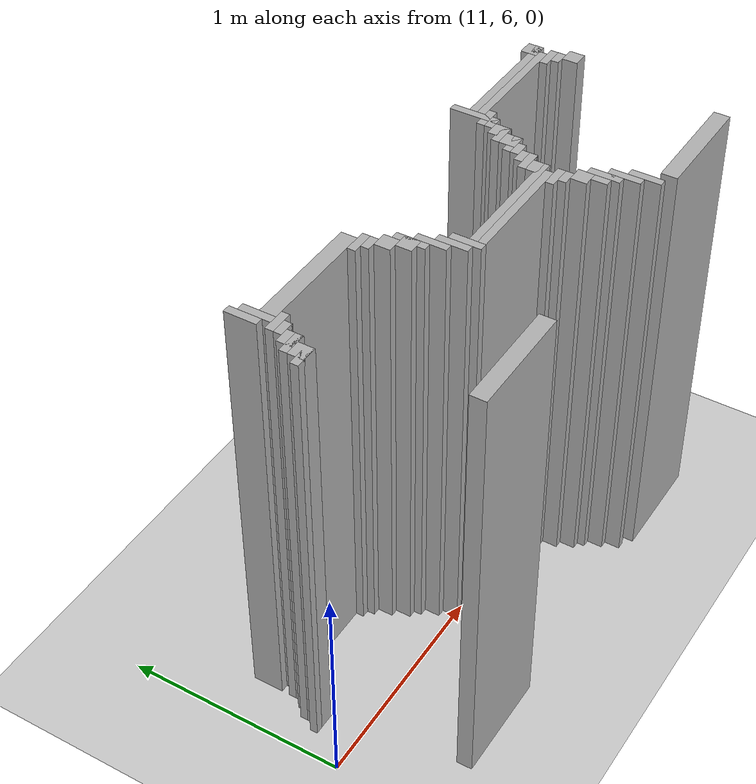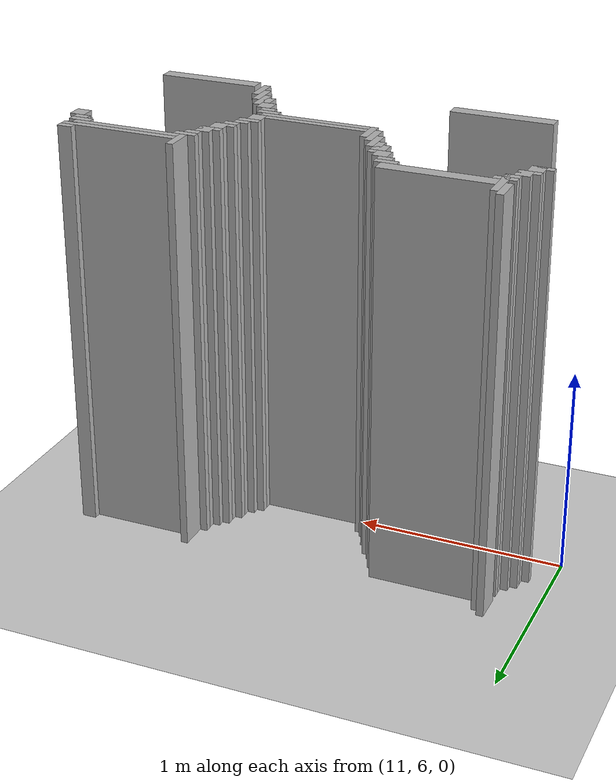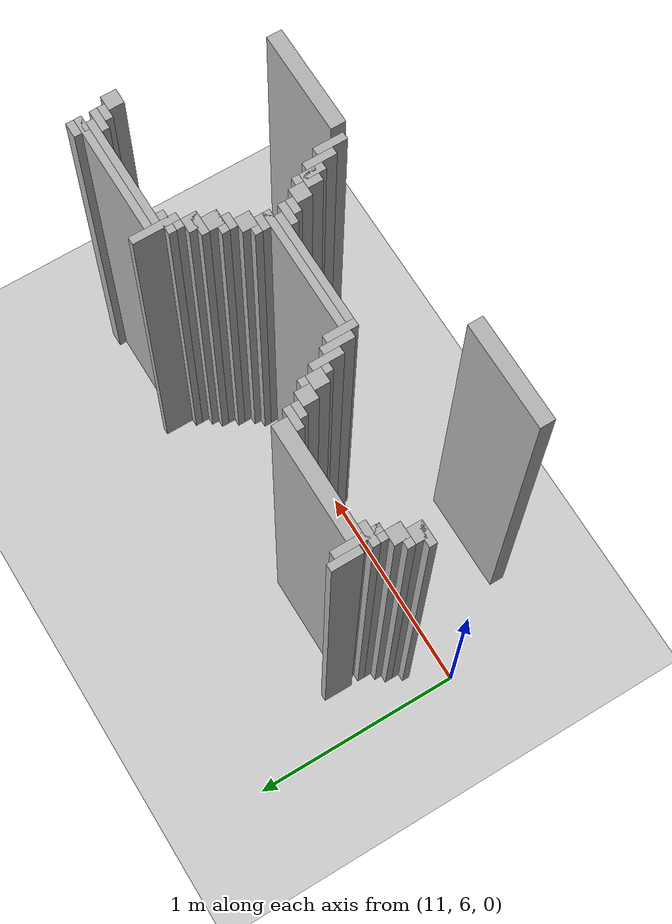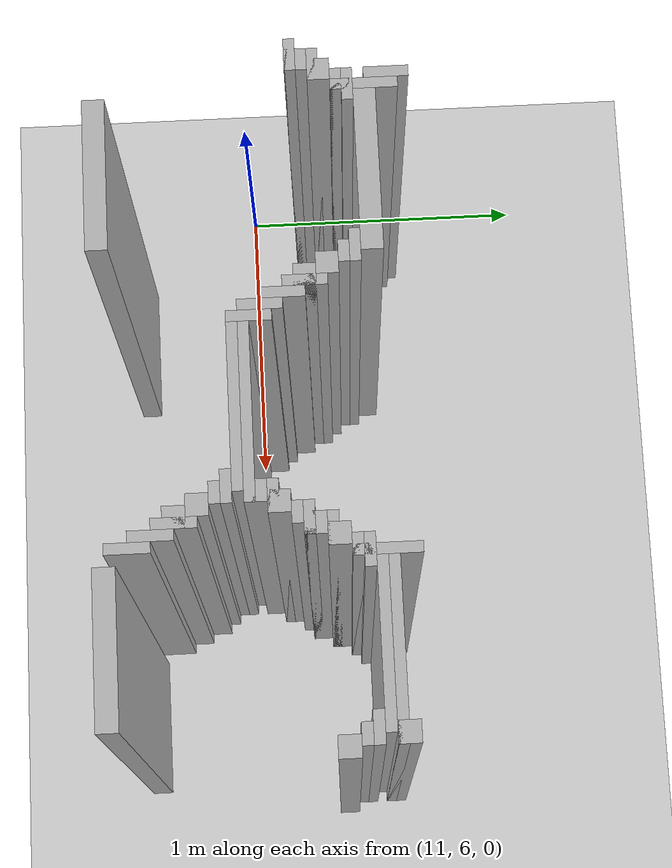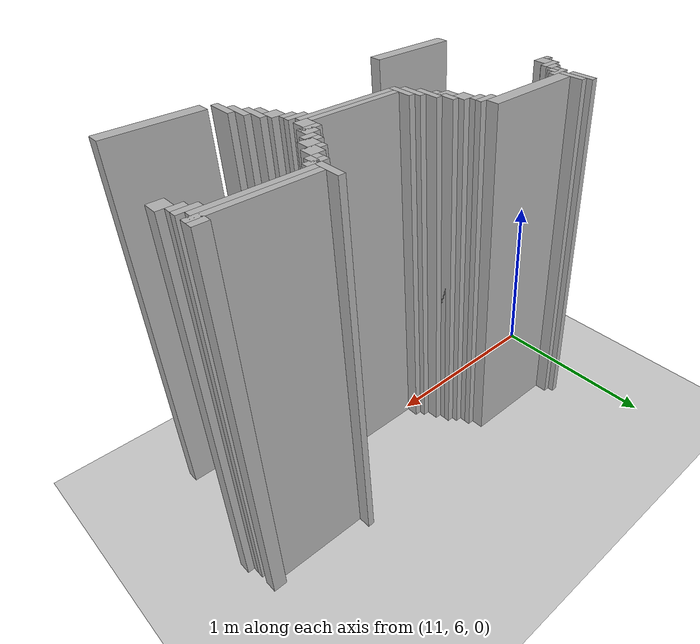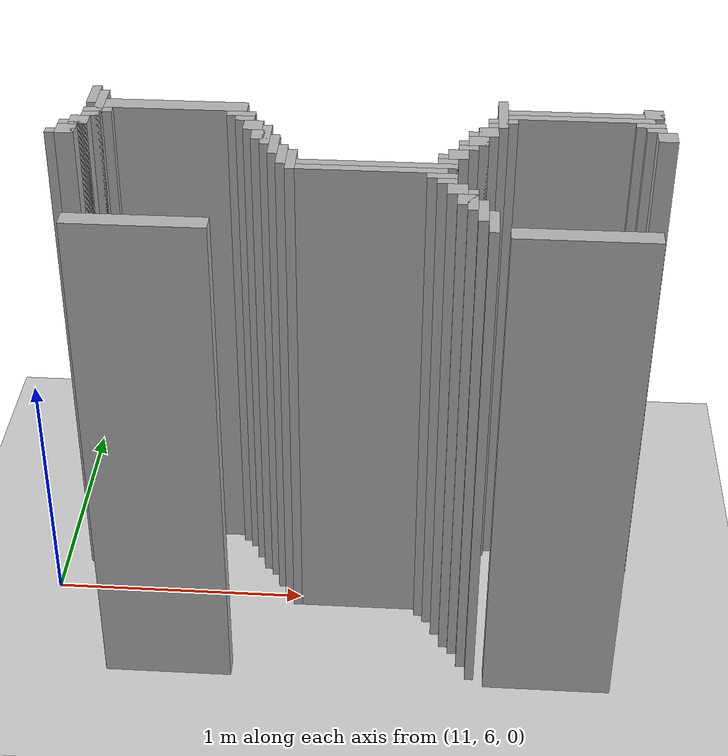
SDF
<sdf version="1.6">
 <world name="slam_world">
  <model name="ground_plane">
   <static>true</static>
   <link name="link">
    <collision name="collision">
     <geometry><plane><normal>0 0 1</normal><size>100 100</size></plane></geometry>
    </collision>
    <visual name="visual">
     <geometry><plane><normal>0 0 1</normal><size>100 100</size></plane></geometry>
     <material>
      <ambient>0.8 0.8 0.8 1</ambient>
      <diffuse>0.8 0.8 0.8 1</diffuse>
      <specular>0.8 0.8 0.8 1</specular>
     </material>
    </visual>
   </link>
  </model>
  <model name="wall_3561">
   <static>true</static>
   <pose>11.223897911832946 6.473317865429234 1.0 0 0 0</pose>
   <link name="link">
    <collision name="collision">
     <geometry><box><size>0.03480278422273782 0.13921113689095127 2.0</size></box></geometry>
    </collision>
    <visual name="visual">
     <geometry><box><size>0.03480278422273782 0.13921113689095127 2.0</size></box></geometry>
     <material><ambient>0.5 0.5 0.5 1</ambient><diffuse>0.7 0.7 0.7 1</diffuse></material>
    </visual>
   </link>
  </model>
  <model name="wall_3581">
   <static>true</static>
   <pose>11.258700696055683 6.403712296983758 1.0 0 0 0</pose>
   <link name="link">
    <collision name="collision">
     <geometry><box><size>0.03480278422273782 0.2088167053364269 2.0</size></box></geometry>
    </collision>
    <visual name="visual">
     <geometry><box><size>0.03480278422273782 0.2088167053364269 2.0</size></box></geometry>
     <material><ambient>0.5 0.5 0.5 1</ambient><diffuse>0.7 0.7 0.7 1</diffuse></material>
    </visual>
   </link>
  </model>
  <model name="wall_3582">
   <static>true</static>
   <pose>12.720417633410673 6.403712296983758 1.0 0 0 0</pose>
   <link name="link">
    <collision name="collision">
     <geometry><box><size>0.03480278422273782 0.2088167053364269 2.0</size></box></geometry>
    </collision>
    <visual name="visual">
     <geometry><box><size>0.03480278422273782 0.2088167053364269 2.0</size></box></geometry>
     <material><ambient>0.5 0.5 0.5 1</ambient><diffuse>0.7 0.7 0.7 1</diffuse></material>
    </visual>
   </link>
  </model>
  <model name="wall_3594">
   <static>true</static>
   <pose>13.259860788863108 6.438515081206496 1.0 0 0 0</pose>
   <link name="link">
    <collision name="collision">
     <geometry><box><size>0.06960556844547564 0.06960556844547564 2.0</size></box></geometry>
    </collision>
    <visual name="visual">
     <geometry><box><size>0.06960556844547564 0.06960556844547564 2.0</size></box></geometry>
     <material><ambient>0.5 0.5 0.5 1</ambient><diffuse>0.7 0.7 0.7 1</diffuse></material>
    </visual>
   </link>
  </model>
  <model name="wall_3607">
   <static>true</static>
   <pose>11.537122969837586 6.403712296983758 1.0 0 0 0</pose>
   <link name="link">
    <collision name="collision">
     <geometry><box><size>0.5220417633410672 0.06960556844547564 2.0</size></box></geometry>
    </collision>
    <visual name="visual">
     <geometry><box><size>0.5220417633410672 0.06960556844547564 2.0</size></box></geometry>
     <material><ambient>0.5 0.5 0.5 1</ambient><diffuse>0.7 0.7 0.7 1</diffuse></material>
    </visual>
   </link>
  </model>
  <model name="wall_3608">
   <static>true</static>
   <pose>13.016241299303944 6.421113689095128 1.0 0 0 0</pose>
   <link name="link">
    <collision name="collision">
     <geometry><box><size>0.5568445475638051 0.03480278422273782 2.0</size></box></geometry>
    </collision>
    <visual name="visual">
     <geometry><box><size>0.5568445475638051 0.03480278422273782 2.0</size></box></geometry>
     <material><ambient>0.5 0.5 0.5 1</ambient><diffuse>0.7 0.7 0.7 1</diffuse></material>
    </visual>
   </link>
  </model>
  <model name="wall_3618">
   <static>true</static>
   <pose>12.998839907192576 6.386310904872389 1.0 0 0 0</pose>
   <link name="link">
    <collision name="collision">
     <geometry><box><size>0.5220417633410672 0.03480278422273782 2.0</size></box></geometry>
    </collision>
    <visual name="visual">
     <geometry><box><size>0.5220417633410672 0.03480278422273782 2.0</size></box></geometry>
     <material><ambient>0.5 0.5 0.5 1</ambient><diffuse>0.7 0.7 0.7 1</diffuse></material>
    </visual>
   </link>
  </model>
  <model name="wall_3628">
   <static>true</static>
   <pose>11.258700696055683 6.351508120649652 1.0 0 0 0</pose>
   <link name="link">
    <collision name="collision">
     <geometry><box><size>0.10440835266821345 0.03480278422273782 2.0</size></box></geometry>
    </collision>
    <visual name="visual">
     <geometry><box><size>0.10440835266821345 0.03480278422273782 2.0</size></box></geometry>
     <material><ambient>0.5 0.5 0.5 1</ambient><diffuse>0.7 0.7 0.7 1</diffuse></material>
    </visual>
   </link>
  </model>
  <model name="wall_3629">
   <static>true</static>
   <pose>11.780742459396752 6.351508120649652 1.0 0 0 0</pose>
   <link name="link">
    <collision name="collision">
     <geometry><box><size>0.10440835266821345 0.03480278422273782 2.0</size></box></geometry>
    </collision>
    <visual name="visual">
     <geometry><box><size>0.10440835266821345 0.03480278422273782 2.0</size></box></geometry>
     <material><ambient>0.5 0.5 0.5 1</ambient><diffuse>0.7 0.7 0.7 1</diffuse></material>
    </visual>
   </link>
  </model>
  <model name="wall_3630">
   <static>true</static>
   <pose>12.720417633410673 6.351508120649652 1.0 0 0 0</pose>
   <link name="link">
    <collision name="collision">
     <geometry><box><size>0.10440835266821345 0.03480278422273782 2.0</size></box></geometry>
    </collision>
    <visual name="visual">
     <geometry><box><size>0.10440835266821345 0.03480278422273782 2.0</size></box></geometry>
     <material><ambient>0.5 0.5 0.5 1</ambient><diffuse>0.7 0.7 0.7 1</diffuse></material>
    </visual>
   </link>
  </model>
  <model name="wall_3631">
   <static>true</static>
   <pose>13.24245939675174 6.351508120649652 1.0 0 0 0</pose>
   <link name="link">
    <collision name="collision">
     <geometry><box><size>0.10440835266821345 0.03480278422273782 2.0</size></box></geometry>
    </collision>
    <visual name="visual">
     <geometry><box><size>0.10440835266821345 0.03480278422273782 2.0</size></box></geometry>
     <material><ambient>0.5 0.5 0.5 1</ambient><diffuse>0.7 0.7 0.7 1</diffuse></material>
    </visual>
   </link>
  </model>
  <model name="wall_3637">
   <static>true</static>
   <pose>11.241299303944315 6.316705336426914 1.0 0 0 0</pose>
   <link name="link">
    <collision name="collision">
     <geometry><box><size>0.06960556844547564 0.03480278422273782 2.0</size></box></geometry>
    </collision>
    <visual name="visual">
     <geometry><box><size>0.06960556844547564 0.03480278422273782 2.0</size></box></geometry>
     <material><ambient>0.5 0.5 0.5 1</ambient><diffuse>0.7 0.7 0.7 1</diffuse></material>
    </visual>
   </link>
  </model>
  <model name="wall_3638">
   <static>true</static>
   <pose>11.79814385150812 6.316705336426914 1.0 0 0 0</pose>
   <link name="link">
    <collision name="collision">
     <geometry><box><size>0.06960556844547564 0.03480278422273782 2.0</size></box></geometry>
    </collision>
    <visual name="visual">
     <geometry><box><size>0.06960556844547564 0.03480278422273782 2.0</size></box></geometry>
     <material><ambient>0.5 0.5 0.5 1</ambient><diffuse>0.7 0.7 0.7 1</diffuse></material>
    </visual>
   </link>
  </model>
  <model name="wall_3639">
   <static>true</static>
   <pose>12.703016241299304 6.316705336426914 1.0 0 0 0</pose>
   <link name="link">
    <collision name="collision">
     <geometry><box><size>0.06960556844547564 0.03480278422273782 2.0</size></box></geometry>
    </collision>
    <visual name="visual">
     <geometry><box><size>0.06960556844547564 0.03480278422273782 2.0</size></box></geometry>
     <material><ambient>0.5 0.5 0.5 1</ambient><diffuse>0.7 0.7 0.7 1</diffuse></material>
    </visual>
   </link>
  </model>
  <model name="wall_3640">
   <static>true</static>
   <pose>13.259860788863108 6.316705336426914 1.0 0 0 0</pose>
   <link name="link">
    <collision name="collision">
     <geometry><box><size>0.06960556844547564 0.03480278422273782 2.0</size></box></geometry>
    </collision>
    <visual name="visual">
     <geometry><box><size>0.06960556844547564 0.03480278422273782 2.0</size></box></geometry>
     <material><ambient>0.5 0.5 0.5 1</ambient><diffuse>0.7 0.7 0.7 1</diffuse></material>
    </visual>
   </link>
  </model>
  <model name="wall_3650">
   <static>true</static>
   <pose>11.206496519721577 6.2645011600928076 1.0 0 0 0</pose>
   <link name="link">
    <collision name="collision">
     <geometry><box><size>0.06960556844547564 0.06960556844547564 2.0</size></box></geometry>
    </collision>
    <visual name="visual">
     <geometry><box><size>0.06960556844547564 0.06960556844547564 2.0</size></box></geometry>
     <material><ambient>0.5 0.5 0.5 1</ambient><diffuse>0.7 0.7 0.7 1</diffuse></material>
    </visual>
   </link>
  </model>
  <model name="wall_3651">
   <static>true</static>
   <pose>11.832946635730858 6.2645011600928076 1.0 0 0 0</pose>
   <link name="link">
    <collision name="collision">
     <geometry><box><size>0.06960556844547564 0.06960556844547564 2.0</size></box></geometry>
    </collision>
    <visual name="visual">
     <geometry><box><size>0.06960556844547564 0.06960556844547564 2.0</size></box></geometry>
     <material><ambient>0.5 0.5 0.5 1</ambient><diffuse>0.7 0.7 0.7 1</diffuse></material>
    </visual>
   </link>
  </model>
  <model name="wall_3652">
   <static>true</static>
   <pose>12.668213457076565 6.2645011600928076 1.0 0 0 0</pose>
   <link name="link">
    <collision name="collision">
     <geometry><box><size>0.06960556844547564 0.06960556844547564 2.0</size></box></geometry>
    </collision>
    <visual name="visual">
     <geometry><box><size>0.06960556844547564 0.06960556844547564 2.0</size></box></geometry>
     <material><ambient>0.5 0.5 0.5 1</ambient><diffuse>0.7 0.7 0.7 1</diffuse></material>
    </visual>
   </link>
  </model>
  <model name="wall_3653">
   <static>true</static>
   <pose>13.294663573085847 6.2645011600928076 1.0 0 0 0</pose>
   <link name="link">
    <collision name="collision">
     <geometry><box><size>0.06960556844547564 0.06960556844547564 2.0</size></box></geometry>
    </collision>
    <visual name="visual">
     <geometry><box><size>0.06960556844547564 0.06960556844547564 2.0</size></box></geometry>
     <material><ambient>0.5 0.5 0.5 1</ambient><diffuse>0.7 0.7 0.7 1</diffuse></material>
    </visual>
   </link>
  </model>
  <model name="wall_3663">
   <static>true</static>
   <pose>11.189095127610209 6.247099767981438 1.0 0 0 0</pose>
   <link name="link">
    <collision name="collision">
     <geometry><box><size>0.10440835266821345 0.03480278422273782 2.0</size></box></geometry>
    </collision>
    <visual name="visual">
     <geometry><box><size>0.10440835266821345 0.03480278422273782 2.0</size></box></geometry>
     <material><ambient>0.5 0.5 0.5 1</ambient><diffuse>0.7 0.7 0.7 1</diffuse></material>
    </visual>
   </link>
  </model>
  <model name="wall_3664">
   <static>true</static>
   <pose>11.885150812064964 6.194895591647332 1.0 0 0 0</pose>
   <link name="link">
    <collision name="collision">
     <geometry><box><size>0.03480278422273782 0.13921113689095127 2.0</size></box></geometry>
    </collision>
    <visual name="visual">
     <geometry><box><size>0.03480278422273782 0.13921113689095127 2.0</size></box></geometry>
     <material><ambient>0.5 0.5 0.5 1</ambient><diffuse>0.7 0.7 0.7 1</diffuse></material>
    </visual>
   </link>
  </model>
  <model name="wall_3665">
   <static>true</static>
   <pose>12.650812064965196 6.247099767981438 1.0 0 0 0</pose>
   <link name="link">
    <collision name="collision">
     <geometry><box><size>0.10440835266821345 0.03480278422273782 2.0</size></box></geometry>
    </collision>
    <visual name="visual">
     <geometry><box><size>0.10440835266821345 0.03480278422273782 2.0</size></box></geometry>
     <material><ambient>0.5 0.5 0.5 1</ambient><diffuse>0.7 0.7 0.7 1</diffuse></material>
    </visual>
   </link>
  </model>
  <model name="wall_3676">
   <static>true</static>
   <pose>11.17169373549884 6.194895591647332 1.0 0 0 0</pose>
   <link name="link">
    <collision name="collision">
     <geometry><box><size>0.06960556844547564 0.06960556844547564 2.0</size></box></geometry>
    </collision>
    <visual name="visual">
     <geometry><box><size>0.06960556844547564 0.06960556844547564 2.0</size></box></geometry>
     <material><ambient>0.5 0.5 0.5 1</ambient><diffuse>0.7 0.7 0.7 1</diffuse></material>
    </visual>
   </link>
  </model>
  <model name="wall_3677">
   <static>true</static>
   <pose>11.867749419953595 6.194895591647332 1.0 0 0 0</pose>
   <link name="link">
    <collision name="collision">
     <geometry><box><size>0.06960556844547564 0.06960556844547564 2.0</size></box></geometry>
    </collision>
    <visual name="visual">
     <geometry><box><size>0.06960556844547564 0.06960556844547564 2.0</size></box></geometry>
     <material><ambient>0.5 0.5 0.5 1</ambient><diffuse>0.7 0.7 0.7 1</diffuse></material>
    </visual>
   </link>
  </model>
  <model name="wall_3678">
   <static>true</static>
   <pose>12.633410672853827 6.194895591647332 1.0 0 0 0</pose>
   <link name="link">
    <collision name="collision">
     <geometry><box><size>0.06960556844547564 0.06960556844547564 2.0</size></box></geometry>
    </collision>
    <visual name="visual">
     <geometry><box><size>0.06960556844547564 0.06960556844547564 2.0</size></box></geometry>
     <material><ambient>0.5 0.5 0.5 1</ambient><diffuse>0.7 0.7 0.7 1</diffuse></material>
    </visual>
   </link>
  </model>
  <model name="wall_3689">
   <static>true</static>
   <pose>11.154292343387471 6.177494199535962 1.0 0 0 0</pose>
   <link name="link">
    <collision name="collision">
     <geometry><box><size>0.10440835266821345 0.03480278422273782 2.0</size></box></geometry>
    </collision>
    <visual name="visual">
     <geometry><box><size>0.10440835266821345 0.03480278422273782 2.0</size></box></geometry>
     <material><ambient>0.5 0.5 0.5 1</ambient><diffuse>0.7 0.7 0.7 1</diffuse></material>
    </visual>
   </link>
  </model>
  <model name="wall_3690">
   <static>true</static>
   <pose>11.919953596287703 6.125290023201856 1.0 0 0 0</pose>
   <link name="link">
    <collision name="collision">
     <geometry><box><size>0.03480278422273782 0.13921113689095127 2.0</size></box></geometry>
    </collision>
    <visual name="visual">
     <geometry><box><size>0.03480278422273782 0.13921113689095127 2.0</size></box></geometry>
     <material><ambient>0.5 0.5 0.5 1</ambient><diffuse>0.7 0.7 0.7 1</diffuse></material>
    </visual>
   </link>
  </model>
  <model name="wall_3691">
   <static>true</static>
   <pose>12.616009280742459 6.177494199535962 1.0 0 0 0</pose>
   <link name="link">
    <collision name="collision">
     <geometry><box><size>0.10440835266821345 0.03480278422273782 2.0</size></box></geometry>
    </collision>
    <visual name="visual">
     <geometry><box><size>0.10440835266821345 0.03480278422273782 2.0</size></box></geometry>
     <material><ambient>0.5 0.5 0.5 1</ambient><diffuse>0.7 0.7 0.7 1</diffuse></material>
    </visual>
   </link>
  </model>
  <model name="wall_3698">
   <static>true</static>
   <pose>12.59860788863109 6.142691415313225 1.0 0 0 0</pose>
   <link name="link">
    <collision name="collision">
     <geometry><box><size>0.06960556844547564 0.03480278422273782 2.0</size></box></geometry>
    </collision>
    <visual name="visual">
     <geometry><box><size>0.06960556844547564 0.03480278422273782 2.0</size></box></geometry>
     <material><ambient>0.5 0.5 0.5 1</ambient><diffuse>0.7 0.7 0.7 1</diffuse></material>
    </visual>
   </link>
  </model>
  <model name="wall_3708">
   <static>true</static>
   <pose>11.95475638051044 6.05568445475638 1.0 0 0 0</pose>
   <link name="link">
    <collision name="collision">
     <geometry><box><size>0.03480278422273782 0.13921113689095127 2.0</size></box></geometry>
    </collision>
    <visual name="visual">
     <geometry><box><size>0.03480278422273782 0.13921113689095127 2.0</size></box></geometry>
     <material><ambient>0.5 0.5 0.5 1</ambient><diffuse>0.7 0.7 0.7 1</diffuse></material>
    </visual>
   </link>
  </model>
  <model name="wall_3709">
   <static>true</static>
   <pose>12.563805104408353 6.090487238979118 1.0 0 0 0</pose>
   <link name="link">
    <collision name="collision">
     <geometry><box><size>0.06960556844547564 0.06960556844547564 2.0</size></box></geometry>
    </collision>
    <visual name="visual">
     <geometry><box><size>0.06960556844547564 0.06960556844547564 2.0</size></box></geometry>
     <material><ambient>0.5 0.5 0.5 1</ambient><diffuse>0.7 0.7 0.7 1</diffuse></material>
    </visual>
   </link>
  </model>
  <model name="wall_3721">
   <static>true</static>
   <pose>11.989559164733178 6.020881670533642 1.0 0 0 0</pose>
   <link name="link">
    <collision name="collision">
     <geometry><box><size>0.03480278422273782 0.13921113689095127 2.0</size></box></geometry>
    </collision>
    <visual name="visual">
     <geometry><box><size>0.03480278422273782 0.13921113689095127 2.0</size></box></geometry>
     <material><ambient>0.5 0.5 0.5 1</ambient><diffuse>0.7 0.7 0.7 1</diffuse></material>
    </visual>
   </link>
  </model>
  <model name="wall_3722">
   <static>true</static>
   <pose>12.546403712296984 6.073085846867749 1.0 0 0 0</pose>
   <link name="link">
    <collision name="collision">
     <geometry><box><size>0.10440835266821345 0.03480278422273782 2.0</size></box></geometry>
    </collision>
    <visual name="visual">
     <geometry><box><size>0.10440835266821345 0.03480278422273782 2.0</size></box></geometry>
     <material><ambient>0.5 0.5 0.5 1</ambient><diffuse>0.7 0.7 0.7 1</diffuse></material>
    </visual>
   </link>
  </model>
  <model name="wall_3729">
   <static>true</static>
   <pose>12.529002320185615 6.020881670533642 1.0 0 0 0</pose>
   <link name="link">
    <collision name="collision">
     <geometry><box><size>0.06960556844547564 0.06960556844547564 2.0</size></box></geometry>
    </collision>
    <visual name="visual">
     <geometry><box><size>0.06960556844547564 0.06960556844547564 2.0</size></box></geometry>
     <material><ambient>0.5 0.5 0.5 1</ambient><diffuse>0.7 0.7 0.7 1</diffuse></material>
    </visual>
   </link>
  </model>
  <model name="wall_3739">
   <static>true</static>
   <pose>12.28538283062645 6.003480278422273 1.0 0 0 0</pose>
   <link name="link">
    <collision name="collision">
     <geometry><box><size>0.5568445475638051 0.03480278422273782 2.0</size></box></geometry>
    </collision>
    <visual name="visual">
     <geometry><box><size>0.5568445475638051 0.03480278422273782 2.0</size></box></geometry>
     <material><ambient>0.5 0.5 0.5 1</ambient><diffuse>0.7 0.7 0.7 1</diffuse></material>
    </visual>
   </link>
  </model>
  <model name="wall_3750">
   <static>true</static>
   <pose>12.267981438515081 5.968677494199536 1.0 0 0 0</pose>
   <link name="link">
    <collision name="collision">
     <geometry><box><size>0.5220417633410672 0.03480278422273782 2.0</size></box></geometry>
    </collision>
    <visual name="visual">
     <geometry><box><size>0.5220417633410672 0.03480278422273782 2.0</size></box></geometry>
     <material><ambient>0.5 0.5 0.5 1</ambient><diffuse>0.7 0.7 0.7 1</diffuse></material>
    </visual>
   </link>
  </model>
  <model name="wall_3762">
   <static>true</static>
   <pose>12.511600928074245 5.933874709976798 1.0 0 0 0</pose>
   <link name="link">
    <collision name="collision">
     <geometry><box><size>0.10440835266821345 0.03480278422273782 2.0</size></box></geometry>
    </collision>
    <visual name="visual">
     <geometry><box><size>0.10440835266821345 0.03480278422273782 2.0</size></box></geometry>
     <material><ambient>0.5 0.5 0.5 1</ambient><diffuse>0.7 0.7 0.7 1</diffuse></material>
    </visual>
   </link>
  </model>
  <model name="wall_3769">
   <static>true</static>
   <pose>12.529002320185615 5.89907192575406 1.0 0 0 0</pose>
   <link name="link">
    <collision name="collision">
     <geometry><box><size>0.06960556844547564 0.03480278422273782 2.0</size></box></geometry>
    </collision>
    <visual name="visual">
     <geometry><box><size>0.06960556844547564 0.03480278422273782 2.0</size></box></geometry>
     <material><ambient>0.5 0.5 0.5 1</ambient><diffuse>0.7 0.7 0.7 1</diffuse></material>
    </visual>
   </link>
  </model>
  <model name="wall_3781">
   <static>true</static>
   <pose>12.563805104408353 5.846867749419953 1.0 0 0 0</pose>
   <link name="link">
    <collision name="collision">
     <geometry><box><size>0.06960556844547564 0.06960556844547564 2.0</size></box></geometry>
    </collision>
    <visual name="visual">
     <geometry><box><size>0.06960556844547564 0.06960556844547564 2.0</size></box></geometry>
     <material><ambient>0.5 0.5 0.5 1</ambient><diffuse>0.7 0.7 0.7 1</diffuse></material>
    </visual>
   </link>
  </model>
  <model name="wall_3794">
   <static>true</static>
   <pose>12.616009280742459 5.7772621809744775 1.0 0 0 0</pose>
   <link name="link">
    <collision name="collision">
     <geometry><box><size>0.03480278422273782 0.13921113689095127 2.0</size></box></geometry>
    </collision>
    <visual name="visual">
     <geometry><box><size>0.03480278422273782 0.13921113689095127 2.0</size></box></geometry>
     <material><ambient>0.5 0.5 0.5 1</ambient><diffuse>0.7 0.7 0.7 1</diffuse></material>
    </visual>
   </link>
  </model>
  <model name="wall_3807">
   <static>true</static>
   <pose>12.59860788863109 5.7772621809744775 1.0 0 0 0</pose>
   <link name="link">
    <collision name="collision">
     <geometry><box><size>0.06960556844547564 0.06960556844547564 2.0</size></box></geometry>
    </collision>
    <visual name="visual">
     <geometry><box><size>0.06960556844547564 0.06960556844547564 2.0</size></box></geometry>
     <material><ambient>0.5 0.5 0.5 1</ambient><diffuse>0.7 0.7 0.7 1</diffuse></material>
    </visual>
   </link>
  </model>
  <model name="wall_3819">
   <static>true</static>
   <pose>12.650812064965196 5.707656612529002 1.0 0 0 0</pose>
   <link name="link">
    <collision name="collision">
     <geometry><box><size>0.03480278422273782 0.13921113689095127 2.0</size></box></geometry>
    </collision>
    <visual name="visual">
     <geometry><box><size>0.03480278422273782 0.13921113689095127 2.0</size></box></geometry>
     <material><ambient>0.5 0.5 0.5 1</ambient><diffuse>0.7 0.7 0.7 1</diffuse></material>
    </visual>
   </link>
  </model>
  <model name="wall_3838">
   <static>true</static>
   <pose>12.685614849187935 5.638051044083526 1.0 0 0 0</pose>
   <link name="link">
    <collision name="collision">
     <geometry><box><size>0.03480278422273782 0.13921113689095127 2.0</size></box></geometry>
    </collision>
    <visual name="visual">
     <geometry><box><size>0.03480278422273782 0.13921113689095127 2.0</size></box></geometry>
     <material><ambient>0.5 0.5 0.5 1</ambient><diffuse>0.7 0.7 0.7 1</diffuse></material>
    </visual>
   </link>
  </model>
  <model name="wall_3864">
   <static>true</static>
   <pose>11.519721577726218 5.56844547563805 1.0 0 0 0</pose>
   <link name="link">
    <collision name="collision">
     <geometry><box><size>0.4872389791183295 0.06960556844547564 2.0</size></box></geometry>
    </collision>
    <visual name="visual">
     <geometry><box><size>0.4872389791183295 0.06960556844547564 2.0</size></box></geometry>
     <material><ambient>0.5 0.5 0.5 1</ambient><diffuse>0.7 0.7 0.7 1</diffuse></material>
    </visual>
   </link>
  </model>
  <model name="wall_3865">
   <static>true</static>
   <pose>12.981438515081207 5.56844547563805 1.0 0 0 0</pose>
   <link name="link">
    <collision name="collision">
     <geometry><box><size>0.4872389791183295 0.06960556844547564 2.0</size></box></geometry>
    </collision>
    <visual name="visual">
     <geometry><box><size>0.4872389791183295 0.06960556844547564 2.0</size></box></geometry>
     <material><ambient>0.5 0.5 0.5 1</ambient><diffuse>0.7 0.7 0.7 1</diffuse></material>
    </visual>
   </link>
  </model>
 </world>
</sdf>
